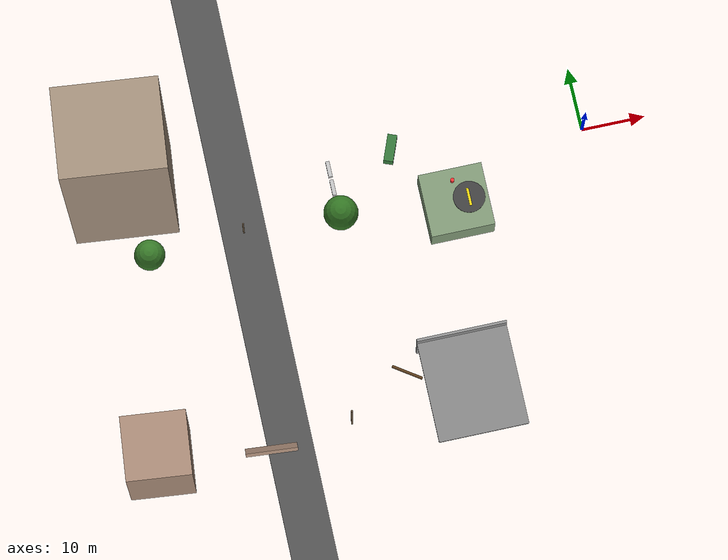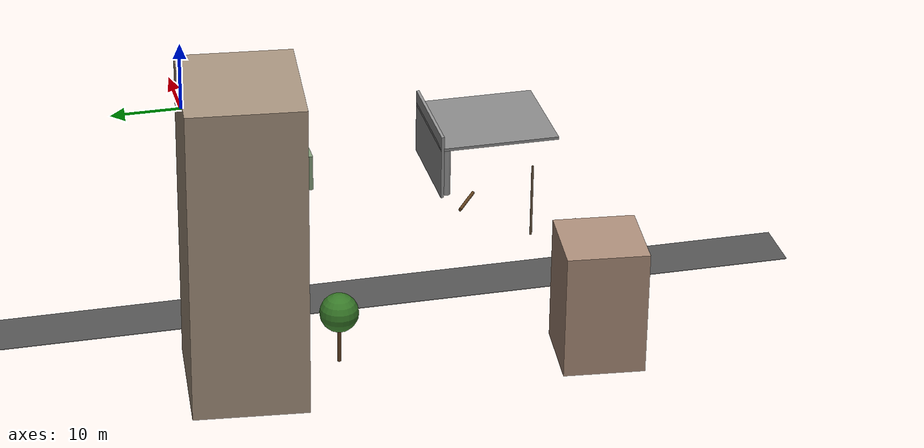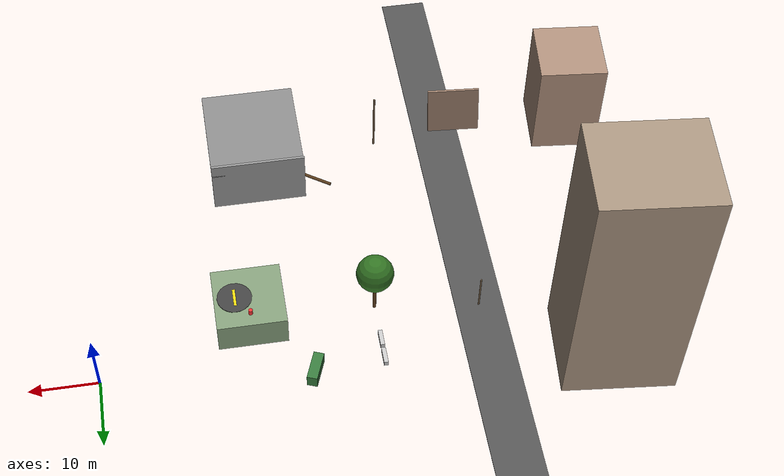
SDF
<sdf version="1.9">
 <world name="p110_world">
  <model name="road_ns_w">
   <static>true</static>
   <pose>-55 0 0.05 0 0 0</pose>
   <link name="link">
    <visual name="v">
     <geometry><box><size>7 260 0.08</size></box></geometry>
     <material>
      <ambient>0.27 0.27 0.27 1</ambient>
      <diffuse>0.33 0.33 0.33 1</diffuse>
      <specular>0.10 0.10 0.10 1</specular>
     </material>
    </visual>
   </link>
  </model>
  <model name="col2_corner">
   <static>true</static>
   <pose>-75 -38 8 0 0 -0.1</pose>
   <link name="link">
    <collision name="c"><geometry><box><size>10 10 16</size></box></geometry></collision>
    <visual name="v">
     <geometry><box><size>10 10 16</size></box></geometry>
     <material><ambient>0.58 0.48 0.42 1</ambient><diffuse>0.68 0.56 0.48 1</diffuse></material>
    </visual>
   </link>
  </model>
  <model name="col2_wall_lean">
   <static>true</static>
   <pose>-58 -40 3.5 0.3 0 -0.08</pose>
   <link name="link">
    <collision name="c"><geometry><box><size>8 0.5 7</size></box></geometry></collision>
    <visual name="v">
     <geometry><box><size>8 0.5 7</size></box></geometry>
     <material><ambient>0.56 0.46 0.40 1</ambient><diffuse>0.66 0.54 0.46 1</diffuse></material>
    </visual>
   </link>
  </model>
  <model name="platform_1">
   <static>true</static>
   <pose>-22 -8 2.5 0 0 0</pose>
   <link name="link">
    <collision name="c"><geometry><box><size>10 10 5</size></box></geometry></collision>
    <visual name="v">
     <geometry><box><size>10 10 5</size></box></geometry>
     <material><ambient>0.45 0.55 0.40 1</ambient><diffuse>0.52 0.62 0.48 1</diffuse></material>
    </visual>
   </link>
  </model>
  <model name="tr_ew6">
   <static>true</static>
   <pose>-70 -7 0 0 0 0</pose>
   <link name="link">
    <visual name="t">
     <pose>0 0 2.5 0 0 0</pose>
     <geometry><cylinder><radius>0.22</radius><length>5</length></cylinder></geometry>
     <material><ambient>0.34 0.21 0.10 1</ambient><diffuse>0.40 0.26 0.13 1</diffuse></material>
    </visual>
    <visual name="c">
     <pose>0 0 6.8 0 0 0</pose>
     <geometry><sphere><radius>2.4</radius></sphere></geometry>
     <material><ambient>0.18 0.40 0.13 1</ambient><diffuse>0.22 0.48 0.16 1</diffuse></material>
    </visual>
   </link>
  </model>
  <model name="tr_ew7">
   <static>true</static>
   <pose>-40 -7 0 0 0 0</pose>
   <link name="link">
    <visual name="t">
     <pose>0 0 3.0 0 0 0</pose>
     <geometry><cylinder><radius>0.24</radius><length>6</length></cylinder></geometry>
     <material><ambient>0.32 0.20 0.10 1</ambient><diffuse>0.38 0.25 0.12 1</diffuse></material>
    </visual>
    <visual name="c">
     <pose>0 0 8.0 0 0 0</pose>
     <geometry><sphere><radius>2.7</radius></sphere></geometry>
     <material><ambient>0.16 0.38 0.11 1</ambient><diffuse>0.20 0.46 0.14 1</diffuse></material>
    </visual>
   </link>
  </model>
  <model name="tr_fallen2">
   <static>true</static>
   <pose>-35 -32 0.22 0 1.5708 -0.6</pose>
   <link name="link">
    <collision name="c">
     <geometry><cylinder><radius>0.22</radius><length>5</length></cylinder></geometry>
    </collision>
    <visual name="v">
     <geometry><cylinder><radius>0.22</radius><length>5</length></cylinder></geometry>
     <material><ambient>0.33 0.21 0.10 1</ambient><diffuse>0.39 0.26 0.12 1</diffuse></material>
    </visual>
   </link>
  </model>
  <model name="car_ov3">
   <static>true</static>
   <pose>-30 3 1.0 1.5708 0 1.2</pose>
   <link name="link">
    <collision name="c"><geometry><box><size>4.3 2.0 1.5</size></box></geometry></collision>
    <visual name="v">
     <geometry><box><size>4.3 2.0 1.5</size></box></geometry>
     <material>
      <ambient>0.18 0.40 0.20 1</ambient>
      <diffuse>0.22 0.48 0.24 1</diffuse>
      <specular>0.20 0.28 0.20 1</specular>
     </material>
    </visual>
   </link>
  </model>
  <model name="pole_stand2">
   <static>true</static>
   <pose>-45 -38 5 0 0 0</pose>
   <link name="link">
    <collision name="c">
     <geometry><cylinder><radius>0.15</radius><length>10</length></cylinder></geometry>
    </collision>
    <visual name="v">
     <geometry><cylinder><radius>0.15</radius><length>10</length></cylinder></geometry>
     <material><ambient>0.35 0.28 0.20 1</ambient><diffuse>0.42 0.34 0.25 1</diffuse></material>
    </visual>
   </link>
  </model>
  <model name="jb4">
   <static>true</static>
   <pose>-40 2 0.4 0 0 1.5708</pose>
   <link name="link">
    <collision name="c"><geometry><box><size>2.5 0.6 0.8</size></box></geometry></collision>
    <visual name="v">
     <geometry><box><size>2.5 0.6 0.8</size></box></geometry>
     <material><ambient>0.70 0.70 0.70 1</ambient><diffuse>0.78 0.78 0.78 1</diffuse></material>
    </visual>
   </link>
  </model>
  <model name="jb5">
   <static>true</static>
   <pose>-40 -1 0.4 0 0 1.5708</pose>
   <link name="link">
    <collision name="c"><geometry><box><size>2.5 0.6 0.8</size></box></geometry></collision>
    <visual name="v">
     <geometry><box><size>2.5 0.6 0.8</size></box></geometry>
     <material><ambient>0.70 0.70 0.70 1</ambient><diffuse>0.78 0.78 0.78 1</diffuse></material>
    </visual>
   </link>
  </model>
  <model name="rt2">
   <static>true</static>
   <pose>-22 -5 5.0 0 0 0</pose>
   <link name="link">
    <collision name="c">
     <geometry><cylinder><radius>0.3</radius><length>1.7</length></cylinder></geometry>
    </collision>
    <visual name="v">
     <geometry><cylinder><radius>0.3</radius><length>1.7</length></cylinder></geometry>
     <material><ambient>1.0 0.2 0.2 1</ambient><diffuse>1.0 0.2 0.2 1</diffuse></material>
    </visual>
   </link>
  </model>
  <model name="cable_pole_3a">
   <static>true</static>
   <pose>-55 -5 3.0 0 0 0</pose>
   <link name="link">
    <collision name="c">
     <geometry><cylinder><radius>0.12</radius><length>6</length></cylinder></geometry>
    </collision>
    <visual name="v">
     <geometry><cylinder><radius>0.12</radius><length>6</length></cylinder></geometry>
     <material><ambient>0.35 0.28 0.20 1</ambient><diffuse>0.42 0.34 0.25 1</diffuse></material>
    </visual>
   </link>
  </model>
  <model name="prk_col_1">
   <static>true</static>
   <pose>-32 -30 3.5 0 0 0</pose>
   <link name="link">
    <collision name="c">
     <geometry><cylinder><radius>0.5</radius><length>7</length></cylinder></geometry>
    </collision>
    <visual name="v">
     <geometry><cylinder><radius>0.5</radius><length>7</length></cylinder></geometry>
     <material><ambient>0.52 0.52 0.52 1</ambient><diffuse>0.60 0.60 0.60 1</diffuse></material>
    </visual>
   </link>
  </model>
  <model name="prk_col_2">
   <static>true</static>
   <pose>-20 -30 3.5 0 0 0</pose>
   <link name="link">
    <collision name="c">
     <geometry><cylinder><radius>0.5</radius><length>7</length></cylinder></geometry>
    </collision>
    <visual name="v">
     <geometry><cylinder><radius>0.5</radius><length>7</length></cylinder></geometry>
     <material><ambient>0.52 0.52 0.52 1</ambient><diffuse>0.60 0.60 0.60 1</diffuse></material>
    </visual>
   </link>
  </model>
  <model name="prk_roof">
   <static>true</static>
   <pose>-26 -37 7.1 0 0 0</pose>
   <link name="link">
    <collision name="c"><geometry><box><size>14 16 0.4</size></box></geometry></collision>
    <visual name="v">
     <geometry><box><size>14 16 0.4</size></box></geometry>
     <material>
      <ambient>0.46 0.46 0.46 1</ambient>
      <diffuse>0.54 0.54 0.54 1</diffuse>
      <specular>0.08 0.08 0.08 1</specular>
     </material>
    </visual>
   </link>
  </model>
  <model name="prk_wall_n">
   <static>true</static>
   <pose>-26 -29.2 4.5 0 0 0</pose>
   <link name="link">
    <collision name="c"><geometry><box><size>14 0.4 9</size></box></geometry></collision>
    <visual name="v">
     <geometry><box><size>14 0.4 9</size></box></geometry>
     <material><ambient>0.50 0.50 0.50 1</ambient><diffuse>0.58 0.58 0.58 1</diffuse></material>
    </visual>
   </link>
  </model>
  <model name="lz2">
   <static>true</static>
   <pose>-20 -8 5.06 0 0 0</pose>
   <link name="link">
    <visual name="pad">
     <geometry><cylinder><radius>2.5</radius><length>0.10</length></cylinder></geometry>
     <material><ambient>0.20 0.20 0.20 1</ambient><diffuse>0.26 0.26 0.26 1</diffuse></material>
    </visual>
    <visual name="h">
     <pose>0 0 0.06 0 0 0</pose>
     <geometry><box><size>0.4 2.8 0.02</size></box></geometry>
     <material><ambient>0.95 0.85 0.05 1</ambient><diffuse>0.95 0.85 0.05 1</diffuse></material>
    </visual>
   </link>
  </model>
  <model name="west_tower">
   <static>true</static>
   <pose>-72 5 20 0 0 -0.1</pose>
   <link name="link">
    <collision name="c"><geometry><box><size>16 14 40</size></box></geometry></collision>
    <visual name="main">
     <geometry><box><size>16 14 40</size></box></geometry>
     <material>
      <ambient>0.56 0.50 0.44 1</ambient>
      <diffuse>0.66 0.58 0.50 1</diffuse>
      <specular>0.12 0.10 0.10 1</specular>
     </material>
    </visual>
   </link>
  </model>
 </world>
</sdf>
